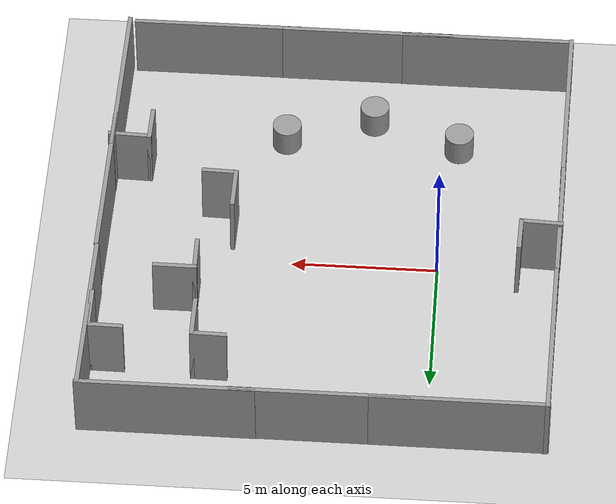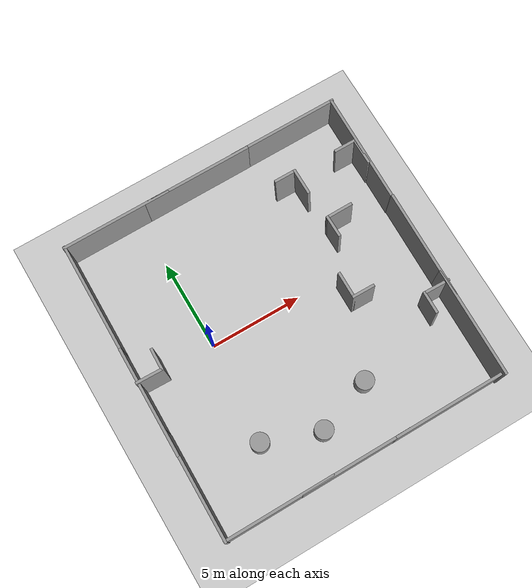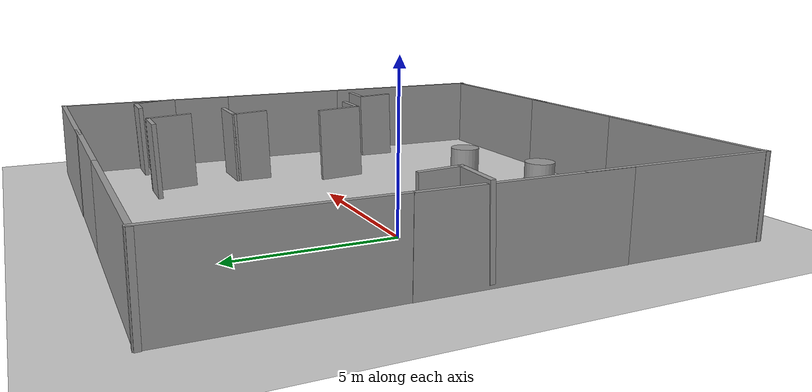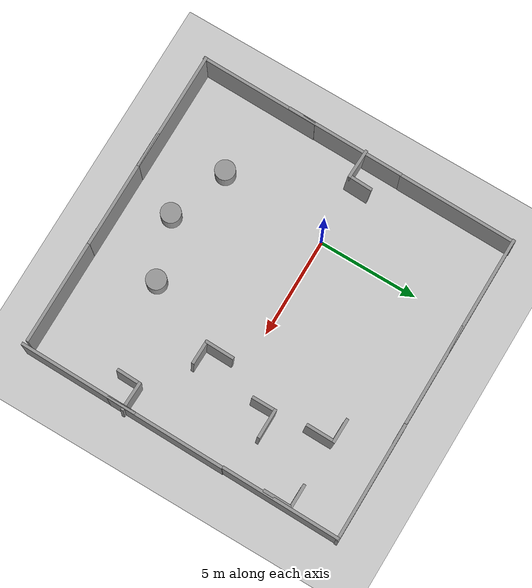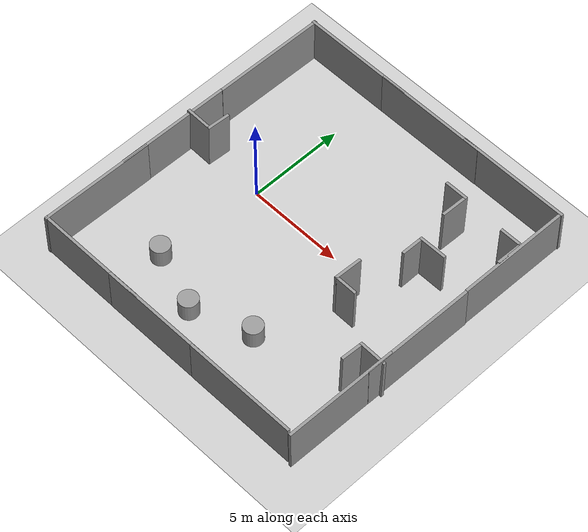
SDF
<sdf version="1.7">
 <world name="default">
  <model name="moon_floor">
   <static>1</static>
   <link name="link">
    <collision name="collision">
     <geometry><plane><normal>0 0 1</normal><size>100 100</size></plane></geometry>
     <surface><friction><ode><mu>0.5</mu><mu2>0.5</mu2></ode></friction></surface>
    </collision>
    <visual name="visual">
     <cast_shadows>0</cast_shadows>
     <geometry><plane><normal>0 0 1</normal><size>100 100</size></plane></geometry>
     <material>
      <script>
       <uri>model://moon_floor/materials/scripts</uri>
       <uri>model://moon_floor/materials/textures</uri>
       <name>vrc/moon</name>
      </script>
     </material>
    </visual>
   </link>
  </model>
  <light name="sun" type="directional">
   <pose>0 0 10 0 -0 0</pose>
   <diffuse>0.8 0.8 0.8 1</diffuse>
   <specular>0.2 0.2 0.2 1</specular>
   <attenuation>
    <range>1000</range>
    <constant>0.9</constant>
    <linear>0.01</linear>
    <quadratic>0.001</quadratic>
   </attenuation>
   <direction>-0.5 0.1 -0.9</direction>
   <spot><inner_angle>0</inner_angle><outer_angle>0</outer_angle><falloff>0</falloff></spot>
  </light>
  <scene><shadows>0</shadows><ambient>0.4 0.4 0.4 1</ambient><background>0.7 0.7 0.7 1</background></scene>
  <physics type="ode">
   <real_time_update_rate>500</real_time_update_rate>
   <max_step_size>0.001</max_step_size>
   <real_time_factor>1</real_time_factor>
   <ode>
    <solver>
     <type>quick</type>
     <iters>150</iters>
     <precon_iters>0</precon_iters>
     <sor>1.4</sor>
     <use_dynamic_moi_rescaling>1</use_dynamic_moi_rescaling>
    </solver>
    <constraints>
     <cfm>1e-05</cfm>
     <erp>0.2</erp>
     <contact_max_correcting_vel>2000</contact_max_correcting_vel>
     <contact_surface_layer>0.01</contact_surface_layer>
    </constraints>
   </ode>
  </physics>
  <gravity>0 0 -9.8</gravity>
  <magnetic_field>6e-06 2.3e-05 -4.2e-05</magnetic_field>
  <atmosphere type="adiabatic"/>
  <audio><device>default</device></audio>
  <spherical_coordinates>
   <surface_model>EARTH_WGS84</surface_model>
   <latitude_deg>0</latitude_deg>
   <longitude_deg>0</longitude_deg>
   <elevation>0</elevation>
   <heading_deg>0</heading_deg>
  </spherical_coordinates>
  <light name="user_spot_light_0" type="spot">
   <pose>-10.1233 15.6325 1 0 -0 0</pose>
   <diffuse>0.5 0.5 0.5 1</diffuse>
   <specular>0.1 0.1 0.1 1</specular>
   <direction>0 0 -1</direction>
   <attenuation>
    <range>20</range>
    <constant>0.5</constant>
    <linear>0.01</linear>
    <quadratic>0.001</quadratic>
   </attenuation>
   <cast_shadows>0</cast_shadows>
   <spot><inner_angle>0.6</inner_angle><outer_angle>1</outer_angle><falloff>1</falloff></spot>
  </light>
  <light name="user_point_light_0" type="point">
   <pose>-2.60577 0.934452 1 0 -0 0</pose>
   <diffuse>0.5 0.5 0.5 1</diffuse>
   <specular>0.1 0.1 0.1 1</specular>
   <attenuation>
    <range>20</range>
    <constant>0.5</constant>
    <linear>0.01</linear>
    <quadratic>0.001</quadratic>
   </attenuation>
   <cast_shadows>0</cast_shadows>
   <direction>0 0 -1</direction>
   <spot><inner_angle>0</inner_angle><outer_angle>0</outer_angle><falloff>0</falloff></spot>
  </light>
  <model name="unit_cylinder">
   <static>1</static>
   <pose>-0.484009 -5.4821 0.499997 -4e-06 -4e-06 -0</pose>
   <link name="link">
    <inertial>
     <mass>1</mass>
     <inertia><ixx>0.145833</ixx><ixy>0</ixy><ixz>0</ixz><iyy>0.145833</iyy><iyz>0</iyz><izz>0.125</izz></inertia>
    </inertial>
    <collision name="collision">
     <geometry><cylinder><radius>0.5</radius><length>1</length></cylinder></geometry>
    </collision>
    <visual name="visual">
     <geometry><cylinder><radius>0.5</radius><length>1</length></cylinder></geometry>
     <material>
      <script><name>Gazebo/Grey</name><uri>file://media/materials/scripts/gazebo.material</uri></script>
     </material>
    </visual>
   </link>
  </model>
  <model name="unit_cylinder_clone">
   <static>1</static>
   <pose>2.53133 -6.57444 0.499997 -4e-06 -4e-06 -0</pose>
   <link name="link">
    <inertial>
     <mass>1</mass>
     <inertia><ixx>0.145833</ixx><ixy>0</ixy><ixz>0</ixz><iyy>0.145833</iyy><iyz>0</iyz><izz>0.125</izz></inertia>
    </inertial>
    <collision name="collision">
     <geometry><cylinder><radius>0.5</radius><length>1</length></cylinder></geometry>
    </collision>
    <visual name="visual">
     <geometry><cylinder><radius>0.5</radius><length>1</length></cylinder></geometry>
     <material>
      <script><name>Gazebo/Grey</name><uri>file://media/materials/scripts/gazebo.material</uri></script>
     </material>
    </visual>
   </link>
  </model>
  <model name="unit_cylinder_clone_0">
   <static>1</static>
   <pose>5.53978 -5.51378 0.499997 -4e-06 -4e-06 -0</pose>
   <link name="link">
    <inertial>
     <mass>1</mass>
     <inertia><ixx>0.145833</ixx><ixy>0</ixy><ixz>0</ixz><iyy>0.145833</iyy><iyz>0</iyz><izz>0.125</izz></inertia>
    </inertial>
    <collision name="collision">
     <geometry><cylinder><radius>0.5</radius><length>1</length></cylinder></geometry>
    </collision>
    <visual name="visual">
     <geometry><cylinder><radius>0.5</radius><length>1</length></cylinder></geometry>
     <material>
      <script><name>Gazebo/Grey</name><uri>file://media/materials/scripts/gazebo.material</uri></script>
     </material>
    </visual>
   </link>
  </model>
  <model name="Untitled_1">
   <pose>11.5665 -6.04361 -1e-06 0.012772 -0.043584 -1.59894</pose>
   <link name="Wall_0">
    <collision name="Wall_0_Collision">
     <geometry><box><size>1.5 0.15 2.5</size></box></geometry>
     <pose>0 0 1.25 0 -0 0</pose>
    </collision>
    <visual name="Wall_0_Visual">
     <pose>0 0 1.25 0 -0 0</pose>
     <geometry><box><size>1.5 0.15 2.5</size></box></geometry>
     <material>
      <script><uri>file://media/materials/scripts/gazebo.material</uri><name>Gazebo/Grey</name></script>
      <ambient>1 1 1 1</ambient>
     </material>
     <meta><layer>0</layer></meta>
    </visual>
    <pose>-2.4275 -0.7875 0 0 -0 -1.5708</pose>
   </link>
   <link name="Wall_1">
    <collision name="Wall_1_Collision">
     <geometry><box><size>1.25 0.15 2.5</size></box></geometry>
     <pose>0 0 1.25 0 -0 0</pose>
    </collision>
    <visual name="Wall_1_Visual">
     <pose>0 0 1.25 0 -0 0</pose>
     <geometry><box><size>1.25 0.15 2.5</size></box></geometry>
     <material>
      <script><uri>file://media/materials/scripts/gazebo.material</uri><name>Gazebo/Grey</name></script>
      <ambient>1 1 1 1</ambient>
     </material>
     <meta><layer>0</layer></meta>
    </visual>
    <pose>-1.8775 -1.4625 0 0 -0 0</pose>
   </link>
   <static>1</static>
  </model>
  <model name="Untitled_1_clone">
   <pose>9.49473 -0.557072 -0.000763 -0.043716 -0.012313 -0.017371</pose>
   <link name="Wall_0">
    <collision name="Wall_0_Collision">
     <geometry><box><size>1.5 0.15 2.5</size></box></geometry>
     <pose>0 0 1.25 0 -0 0</pose>
    </collision>
    <visual name="Wall_0_Visual">
     <pose>0 0 1.25 0 -0 0</pose>
     <geometry><box><size>1.5 0.15 2.5</size></box></geometry>
     <material>
      <script><uri>file://media/materials/scripts/gazebo.material</uri><name>Gazebo/Grey</name></script>
      <ambient>1 1 1 1</ambient>
     </material>
     <meta><layer>0</layer></meta>
    </visual>
    <pose>-2.4275 -0.7875 0 0 -0 -1.5708</pose>
   </link>
   <link name="Wall_1">
    <collision name="Wall_1_Collision">
     <geometry><box><size>1.25 0.15 2.5</size></box></geometry>
     <pose>0 0 1.25 0 -0 0</pose>
    </collision>
    <visual name="Wall_1_Visual">
     <pose>0 0 1.25 0 -0 0</pose>
     <geometry><box><size>1.25 0.15 2.5</size></box></geometry>
     <material>
      <script><uri>file://media/materials/scripts/gazebo.material</uri><name>Gazebo/Grey</name></script>
      <ambient>1 1 1 1</ambient>
     </material>
     <meta><layer>0</layer></meta>
    </visual>
    <pose>-1.8775 -1.4625 0 0 -0 0</pose>
   </link>
   <static>1</static>
  </model>
  <model name="Untitled_1_clone_clone">
   <pose>-4.16071 2.11847 -0.000762 -0.012906 0.043545 1.53955</pose>
   <link name="Wall_0">
    <collision name="Wall_0_Collision">
     <geometry><box><size>1.5 0.15 2.5</size></box></geometry>
     <pose>0 0 1.25 0 -0 0</pose>
    </collision>
    <visual name="Wall_0_Visual">
     <pose>0 0 1.25 0 -0 0</pose>
     <geometry><box><size>1.5 0.15 2.5</size></box></geometry>
     <material>
      <script><uri>file://media/materials/scripts/gazebo.material</uri><name>Gazebo/Grey</name></script>
      <ambient>1 1 1 1</ambient>
     </material>
     <meta><layer>0</layer></meta>
    </visual>
    <pose>-2.4275 -0.7875 0 0 -0 -1.5708</pose>
   </link>
   <link name="Wall_1">
    <collision name="Wall_1_Collision">
     <geometry><box><size>1.25 0.15 2.5</size></box></geometry>
     <pose>0 0 1.25 0 -0 0</pose>
    </collision>
    <visual name="Wall_1_Visual">
     <pose>0 0 1.25 0 -0 0</pose>
     <geometry><box><size>1.25 0.15 2.5</size></box></geometry>
     <material>
      <script><uri>file://media/materials/scripts/gazebo.material</uri><name>Gazebo/Grey</name></script>
      <ambient>1 1 1 1</ambient>
     </material>
     <meta><layer>0</layer></meta>
    </visual>
    <pose>-1.8775 -1.4625 0 0 -0 0</pose>
   </link>
   <static>1</static>
  </model>
  <model name="Untitled_1_clone_clone_0">
   <pose>9.57948 -0.20874 -0.000762 0.011478 -0.043943 -1.56937</pose>
   <link name="Wall_0">
    <collision name="Wall_0_Collision">
     <geometry><box><size>1.5 0.15 2.5</size></box></geometry>
     <pose>0 0 1.25 0 -0 0</pose>
    </collision>
    <visual name="Wall_0_Visual">
     <pose>0 0 1.25 0 -0 0</pose>
     <geometry><box><size>1.5 0.15 2.5</size></box></geometry>
     <material>
      <script><uri>file://media/materials/scripts/gazebo.material</uri><name>Gazebo/Grey</name></script>
      <ambient>1 1 1 1</ambient>
     </material>
     <meta><layer>0</layer></meta>
    </visual>
    <pose>-2.4275 -0.7875 0 0 -0 -1.5708</pose>
   </link>
   <link name="Wall_1">
    <collision name="Wall_1_Collision">
     <geometry><box><size>1.25 0.15 2.5</size></box></geometry>
     <pose>0 0 1.25 0 -0 0</pose>
    </collision>
    <visual name="Wall_1_Visual">
     <pose>0 0 1.25 0 -0 0</pose>
     <geometry><box><size>1.25 0.15 2.5</size></box></geometry>
     <material>
      <script><uri>file://media/materials/scripts/gazebo.material</uri><name>Gazebo/Grey</name></script>
      <ambient>1 1 1 1</ambient>
     </material>
     <meta><layer>0</layer></meta>
    </visual>
    <pose>-1.8775 -1.4625 0 0 -0 0</pose>
   </link>
   <static>1</static>
  </model>
  <model name="Untitled_1_clone_clone_1">
   <pose>8.99078 3.58172 -0.000762 0.04382 0.011939 3.13275</pose>
   <link name="Wall_0">
    <collision name="Wall_0_Collision">
     <geometry><box><size>1.5 0.15 2.5</size></box></geometry>
     <pose>0 0 1.25 0 -0 0</pose>
    </collision>
    <visual name="Wall_0_Visual">
     <pose>0 0 1.25 0 -0 0</pose>
     <geometry><box><size>1.5 0.15 2.5</size></box></geometry>
     <material>
      <script><uri>file://media/materials/scripts/gazebo.material</uri><name>Gazebo/Grey</name></script>
      <ambient>1 1 1 1</ambient>
     </material>
     <meta><layer>0</layer></meta>
    </visual>
    <pose>-2.4275 -0.7875 0 0 -0 -1.5708</pose>
   </link>
   <link name="Wall_1">
    <collision name="Wall_1_Collision">
     <geometry><box><size>1.25 0.15 2.5</size></box></geometry>
     <pose>0 0 1.25 0 -0 0</pose>
    </collision>
    <visual name="Wall_1_Visual">
     <pose>0 0 1.25 0 -0 0</pose>
     <geometry><box><size>1.25 0.15 2.5</size></box></geometry>
     <material>
      <script><uri>file://media/materials/scripts/gazebo.material</uri><name>Gazebo/Grey</name></script>
      <ambient>1 1 1 1</ambient>
     </material>
     <meta><layer>0</layer></meta>
    </visual>
    <pose>-1.8775 -1.4625 0 0 -0 0</pose>
   </link>
   <static>1</static>
  </model>
  <model name="Untitled_1_clone_clone_1_clone">
   <pose>5.51769 3.7246 -0.000763 0.04382 0.011939 3.13275</pose>
   <link name="Wall_0">
    <collision name="Wall_0_Collision">
     <geometry><box><size>1.5 0.15 2.5</size></box></geometry>
     <pose>0 0 1.25 0 -0 0</pose>
    </collision>
    <visual name="Wall_0_Visual">
     <pose>0 0 1.25 0 -0 0</pose>
     <geometry><box><size>1.5 0.15 2.5</size></box></geometry>
     <material>
      <script><uri>file://media/materials/scripts/gazebo.material</uri><name>Gazebo/Grey</name></script>
      <ambient>1 1 1 1</ambient>
     </material>
     <meta><layer>0</layer></meta>
    </visual>
    <pose>-2.4275 -0.7875 0 0 -0 -1.5708</pose>
   </link>
   <link name="Wall_1">
    <collision name="Wall_1_Collision">
     <geometry><box><size>1.25 0.15 2.5</size></box></geometry>
     <pose>0 0 1.25 0 -0 0</pose>
    </collision>
    <visual name="Wall_1_Visual">
     <pose>0 0 1.25 0 -0 0</pose>
     <geometry><box><size>1.25 0.15 2.5</size></box></geometry>
     <material>
      <script><uri>file://media/materials/scripts/gazebo.material</uri><name>Gazebo/Grey</name></script>
      <ambient>1 1 1 1</ambient>
     </material>
     <meta><layer>0</layer></meta>
    </visual>
    <pose>-1.8775 -1.4625 0 0 -0 0</pose>
   </link>
   <static>1</static>
  </model>
  <model name="wall_0">
   <pose>10.1216 8.23846 0 0 -0 0</pose>
   <link name="Wall_0">
    <collision name="Wall_0_Collision">
     <geometry><box><size>6 0.15 2.5</size></box></geometry>
     <pose>0 0 1.25 0 -0 0</pose>
    </collision>
    <visual name="Wall_0_Visual">
     <pose>0 0 1.25 0 -0 0</pose>
     <geometry><box><size>6 0.15 2.5</size></box></geometry>
     <material>
      <script><uri>file://media/materials/scripts/gazebo.material</uri><name>Gazebo/Grey</name></script>
      <ambient>1 1 1 1</ambient>
     </material>
     <meta><layer>0</layer></meta>
    </visual>
    <pose>-1.4825 -0.6325 0 0 -0 3.14159</pose>
   </link>
   <static>1</static>
  </model>
  <model name="wall_0_clone">
   <pose>5.01597 8.22558 0 0 -0 0</pose>
   <link name="Wall_0">
    <collision name="Wall_0_Collision">
     <geometry><box><size>6 0.15 2.5</size></box></geometry>
     <pose>0 0 1.25 0 -0 0</pose>
    </collision>
    <visual name="Wall_0_Visual">
     <pose>0 0 1.25 0 -0 0</pose>
     <geometry><box><size>6 0.15 2.5</size></box></geometry>
     <material>
      <script><uri>file://media/materials/scripts/gazebo.material</uri><name>Gazebo/Grey</name></script>
      <ambient>1 1 1 1</ambient>
     </material>
     <meta><layer>0</layer></meta>
    </visual>
    <pose>-1.4825 -0.6325 0 0 -0 3.14159</pose>
   </link>
   <static>1</static>
  </model>
  <model name="wall_0_clone_clone">
   <pose>0.392753 8.22593 0 0 -0 0</pose>
   <link name="Wall_0">
    <collision name="Wall_0_Collision">
     <geometry><box><size>6 0.15 2.5</size></box></geometry>
     <pose>0 0 1.25 0 -0 0</pose>
    </collision>
    <visual name="Wall_0_Visual">
     <pose>0 0 1.25 0 -0 0</pose>
     <geometry><box><size>6 0.15 2.5</size></box></geometry>
     <material>
      <script><uri>file://media/materials/scripts/gazebo.material</uri><name>Gazebo/Grey</name></script>
      <ambient>1 1 1 1</ambient>
     </material>
     <meta><layer>0</layer></meta>
    </visual>
    <pose>-1.4825 -0.6325 0 0 -0 3.14159</pose>
   </link>
   <static>1</static>
  </model>
  <model name="wall_0_clone_clone_clone_clone">
   <pose>-4.73424 0.224297 0 0 -0 1.55605</pose>
   <link name="Wall_0">
    <collision name="Wall_0_Collision">
     <geometry><box><size>6 0.15 2.5</size></box></geometry>
     <pose>0 0 1.25 0 -0 0</pose>
    </collision>
    <visual name="Wall_0_Visual">
     <pose>0 0 1.25 0 -0 0</pose>
     <geometry><box><size>6 0.15 2.5</size></box></geometry>
     <material>
      <script><uri>file://media/materials/scripts/gazebo.material</uri><name>Gazebo/Grey</name></script>
      <ambient>1 1 1 1</ambient>
     </material>
     <meta><layer>0</layer></meta>
    </visual>
    <pose>-1.4825 -0.6325 0 0 -0 3.14159</pose>
   </link>
   <static>1</static>
  </model>
  <model name="wall_0_clone_clone_clone_clone_0">
   <pose>-4.78557 -4.35594 0 0 -0 1.55605</pose>
   <link name="Wall_0">
    <collision name="Wall_0_Collision">
     <geometry><box><size>6 0.15 2.5</size></box></geometry>
     <pose>0 0 1.25 0 -0 0</pose>
    </collision>
    <visual name="Wall_0_Visual">
     <pose>0 0 1.25 0 -0 0</pose>
     <geometry><box><size>6 0.15 2.5</size></box></geometry>
     <material>
      <script><uri>file://media/materials/scripts/gazebo.material</uri><name>Gazebo/Grey</name></script>
      <ambient>1 1 1 1</ambient>
     </material>
     <meta><layer>0</layer></meta>
    </visual>
    <pose>-1.4825 -0.6325 0 0 -0 3.14159</pose>
   </link>
   <static>1</static>
  </model>
  <model name="wall_0_clone_clone_clone_clone_clone">
   <pose>-4.63608 6.18782 0 0 -0 1.55605</pose>
   <link name="Wall_0">
    <collision name="Wall_0_Collision">
     <geometry><box><size>6 0.15 2.5</size></box></geometry>
     <pose>0 0 1.25 0 -0 0</pose>
    </collision>
    <visual name="Wall_0_Visual">
     <pose>0 0 1.25 0 -0 0</pose>
     <geometry><box><size>6 0.15 2.5</size></box></geometry>
     <material>
      <script><uri>file://media/materials/scripts/gazebo.material</uri><name>Gazebo/Grey</name></script>
      <ambient>1 1 1 1</ambient>
     </material>
     <meta><layer>0</layer></meta>
    </visual>
    <pose>-1.4825 -0.6325 0 0 -0 3.14159</pose>
   </link>
   <static>1</static>
  </model>
  <model name="wall_0_clone_clone_clone_clone_clone_0">
   <pose>10.8726 6.1352 0 0 -0 1.55605</pose>
   <link name="Wall_0">
    <collision name="Wall_0_Collision">
     <geometry><box><size>6 0.15 2.5</size></box></geometry>
     <pose>0 0 1.25 0 -0 0</pose>
    </collision>
    <visual name="Wall_0_Visual">
     <pose>0 0 1.25 0 -0 0</pose>
     <geometry><box><size>6 0.15 2.5</size></box></geometry>
     <material>
      <script><uri>file://media/materials/scripts/gazebo.material</uri><name>Gazebo/Grey</name></script>
      <ambient>1 1 1 1</ambient>
     </material>
     <meta><layer>0</layer></meta>
    </visual>
    <pose>-1.4825 -0.6325 0 0 -0 3.14159</pose>
   </link>
   <static>1</static>
  </model>
  <model name="wall_0_clone_clone_clone_clone_clone_1">
   <pose>10.8148 0.131627 0 0 -0 1.55605</pose>
   <link name="Wall_0">
    <collision name="Wall_0_Collision">
     <geometry><box><size>6 0.15 2.5</size></box></geometry>
     <pose>0 0 1.25 0 -0 0</pose>
    </collision>
    <visual name="Wall_0_Visual">
     <pose>0 0 1.25 0 -0 0</pose>
     <geometry><box><size>6 0.15 2.5</size></box></geometry>
     <material>
      <script><uri>file://media/materials/scripts/gazebo.material</uri><name>Gazebo/Grey</name></script>
      <ambient>1 1 1 1</ambient>
     </material>
     <meta><layer>0</layer></meta>
    </visual>
    <pose>-1.4825 -0.6325 0 0 -0 3.14159</pose>
   </link>
   <static>1</static>
  </model>
  <model name="wall_0_clone_clone_clone_clone_clone_2">
   <pose>10.7417 -4.41667 0 0 -0 1.55605</pose>
   <link name="Wall_0">
    <collision name="Wall_0_Collision">
     <geometry><box><size>6 0.15 2.5</size></box></geometry>
     <pose>0 0 1.25 0 -0 0</pose>
    </collision>
    <visual name="Wall_0_Visual">
     <pose>0 0 1.25 0 -0 0</pose>
     <geometry><box><size>6 0.15 2.5</size></box></geometry>
     <material>
      <script><uri>file://media/materials/scripts/gazebo.material</uri><name>Gazebo/Grey</name></script>
      <ambient>1 1 1 1</ambient>
     </material>
     <meta><layer>0</layer></meta>
    </visual>
    <pose>-1.4825 -0.6325 0 0 -0 3.14159</pose>
   </link>
   <static>1</static>
  </model>
  <model name="wall_0_clone_0">
   <pose>9.60237 -8.11929 0 0 -0 0</pose>
   <link name="Wall_0">
    <collision name="Wall_0_Collision">
     <geometry><box><size>6 0.15 2.5</size></box></geometry>
     <pose>0 0 1.25 0 -0 0</pose>
    </collision>
    <visual name="Wall_0_Visual">
     <pose>0 0 1.25 0 -0 0</pose>
     <geometry><box><size>6 0.15 2.5</size></box></geometry>
     <material>
      <script><uri>file://media/materials/scripts/gazebo.material</uri><name>Gazebo/Grey</name></script>
      <ambient>1 1 1 1</ambient>
     </material>
     <meta><layer>0</layer></meta>
    </visual>
    <pose>-1.4825 -0.6325 0 0 -0 3.14159</pose>
   </link>
   <static>1</static>
  </model>
  <model name="wall_0_clone_1">
   <pose>4.41137 -8.11297 0 0 -0 0</pose>
   <link name="Wall_0">
    <collision name="Wall_0_Collision">
     <geometry><box><size>6 0.15 2.5</size></box></geometry>
     <pose>0 0 1.25 0 -0 0</pose>
    </collision>
    <visual name="Wall_0_Visual">
     <pose>0 0 1.25 0 -0 0</pose>
     <geometry><box><size>6 0.15 2.5</size></box></geometry>
     <material>
      <script><uri>file://media/materials/scripts/gazebo.material</uri><name>Gazebo/Grey</name></script>
      <ambient>1 1 1 1</ambient>
     </material>
     <meta><layer>0</layer></meta>
    </visual>
    <pose>-1.4825 -0.6325 0 0 -0 3.14159</pose>
   </link>
   <static>1</static>
  </model>
  <model name="wall_0_clone_2">
   <pose>0.181872 -8.10459 0 0 -0 0</pose>
   <link name="Wall_0">
    <collision name="Wall_0_Collision">
     <geometry><box><size>6 0.15 2.5</size></box></geometry>
     <pose>0 0 1.25 0 -0 0</pose>
    </collision>
    <visual name="Wall_0_Visual">
     <pose>0 0 1.25 0 -0 0</pose>
     <geometry><box><size>6 0.15 2.5</size></box></geometry>
     <material>
      <script><uri>file://media/materials/scripts/gazebo.material</uri><name>Gazebo/Grey</name></script>
      <ambient>1 1 1 1</ambient>
     </material>
     <meta><layer>0</layer></meta>
    </visual>
    <pose>-1.4825 -0.6325 0 0 -0 3.14159</pose>
   </link>
   <static>1</static>
  </model>
 </world>
</sdf>
